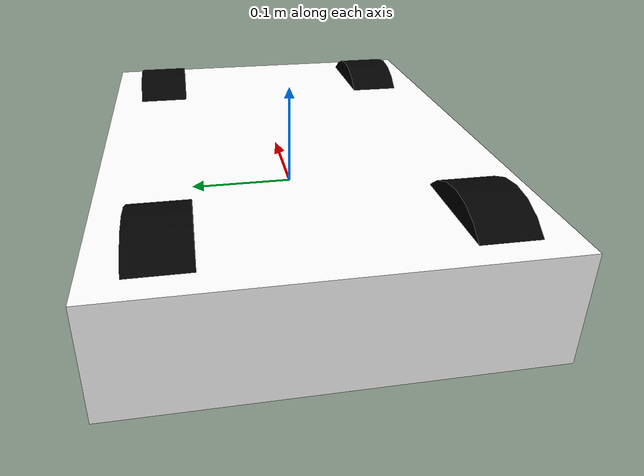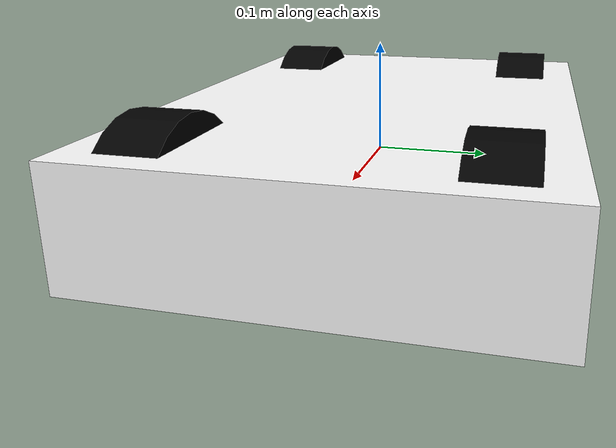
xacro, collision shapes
<?xml version="1.0" encoding="utf-8"?>

<robot name="fw_mini" xmlns:xacro="http://www.ros.org/wiki/xacro">

    <xacro:include filename="$(find irop_description)/urdf/macros.xacro" />

    <link name="base_link">
        <visual>
            <geometry>
                <mesh filename="package://irop_description/meshes/fw-mini-chassis.STL" scale="1 1 1"/>
            </geometry>
            <origin xyz="0.2475 0.19 0.07" rpy="1.57 0 -1.57" />
            <material name="white">
                <color rgba="1 1 1 1" />
            </material>
        </visual>
        <collision>
            <geometry>
                <box size="0.495 0.36 0.1" />
            </geometry>
            <origin xyz="0.0 0.0 0.0" rpy="0.0 0.0 0.0" />
        </collision>
        <inertial>
            <origin xyz="0 0 0" />
            <mass value="20" />
            <inertia ixx="0.132" ixy="0" ixz="0" iyy="0.147" iyz="0" izz="0.0182" />
        </inertial>
    </link>

    <!-- (ADD) IMU frame (matches /imu/data frame_id="sensor") -->
    <!-- IMU is 20cm above robot center (base_link origin) -->

    <link name="imu_link"/>
    <joint name="imu_joint" type="fixed">
        <origin xyz="0 0 0.211035" rpy="0 0 0"/>
        <parent link="base_link"/>
        <child link="imu_link"/>
    </joint>

    <!-- (ADD) Livox frame -->
    <link name="livox_frame"/>
    <joint name="livox_lidar_joint" type="fixed">
        <origin xyz="0 0 0.245377" rpy="0 0 0"/>
        <parent link="base_link"/>
        <child link="livox_frame"/>
    </joint>

    <link name="left_steering_hinge">
        <visual>
            <geometry>
                <cylinder radius="0.02" length="0.005" />
            </geometry>
            <origin xyz="0 0 0" rpy="1.57 0 0" />
            <material name="black">
                <color rgba="0.0 0.0 0.0 1.0" />
            </material>
        </visual>
        <collision>
            <geometry>
                <cylinder radius="0.01" length="0.005" />
            </geometry>
            <origin xyz="0.0 0.0 0.0" rpy="1.57 0.0 0.0" />
        </collision>
        <inertial>
            <origin xyz="0 0 0" />
            <mass value="1" />
            <inertia ixx="2.7E-05" ixy="0" ixz="0" iyy="2.7E-05" iyz="0" izz="5E-05" />
        </inertial>
    </link>

    <joint name="left_steering_hinge_joint" type="revolute">
        <parent link="base_link" />
        <child link="left_steering_hinge" />
        <origin xyz="0.175 0.125 0" />
        <axis xyz="0 0 1" />
        <limit lower="-1.57" upper="1.57" effort="10.0" velocity="50.0"/>
    </joint>

    <link name="left_front_wheel">
        <visual>
            <geometry>
                <mesh filename="package://irop_description/meshes/fw-mini-luntai.STL" scale="1 1 1"/>
            </geometry>
            <origin xyz="0.073 -0.305 0.425" rpy="1.57 1.57 -3.14" />
            <material name="black">
                <color rgba="0.0 0.0 0.0 1.0" />
            </material>
        </visual>
        <collision>
            <geometry>
                <cylinder radius="0.07" length="0.05" />
            </geometry>
            <origin xyz="0.0 0.0 0.0" rpy="1.57 0.0 0.0" />
        </collision>
        <inertial>
            <origin xyz="0 0 0" />
            <mass value="4" />
            <inertia
            ixx="0.01603" ixy="0" ixz="0"
            iyy="0.01603" iyz="0"
            izz="0.0288"
            />
        </inertial>
    </link>

    <joint name="left_front_wheel_joint" type="continuous">
        <parent link="left_steering_hinge" />
        <child link="left_front_wheel" />
        <origin xyz="0 0.0 0" />
        <axis xyz="0 1 0" />
        <limit effort="10" velocity="1000" />
    </joint>

    <link name="right_steering_hinge">
        <visual>
            <geometry>
                 <cylinder radius="0.02" length="0.005" />
            </geometry>
            <origin xyz="0 0 0" rpy="1.57 0 0" />
            <material name="black">
                <color rgba="0.0 0.0 0.0 1.0" />
            </material>
        </visual>
        <collision>
            <geometry>
                <cylinder radius="0.01" length="0.005" />
            </geometry>
            <origin xyz="0.0 0.0 0.0" rpy="1.57 0.0 0.0" />
        </collision>
        <inertial>
            <origin xyz="0 0 0" />
            <mass value="1" />
            <inertia ixx="2.7E-05" ixy="0" ixz="0" iyy="2.7E-05" iyz="0" izz="5E-05" />
        </inertial>
    </link>

    <joint name="right_steering_hinge_joint" type="revolute">
        <parent link="base_link" />
        <child link="right_steering_hinge" />
        <origin xyz="0.175 -0.125 0" />
        <axis xyz="0 0 1" />
        <limit lower="-1.57" upper="1.57" effort="10.0" velocity="50.0"/>
    </joint>

     <link name="right_front_wheel">
        <visual>
            <geometry>
                <mesh filename="package://irop_description/meshes/fw-mini-luntai.STL" scale="1 1 1"/>
            </geometry>
            <origin xyz="-0.073 0.305 0.425" rpy="1.57 1.57 0" />
            <material name="black">
                <color rgba="0.0 0.0 0.0 1.0" />
            </material>
        </visual>
        <collision>
            <geometry>
                <cylinder radius="0.07" length="0.05" />
            </geometry>
            <origin xyz="0.0 0.0 0.0" rpy="1.57 0.0 0.0" />
        </collision>
        <inertial>
            <origin xyz="0 0 0" />
            <mass value="4" />
            <inertia
            ixx="0.01603" ixy="0" ixz="0"
            iyy="0.01603" iyz="0"
            izz="0.0288"
            />
        </inertial>
    </link>

    <joint name="right_front_wheel_joint" type="continuous">
        <parent link="right_steering_hinge" />
        <child link="right_front_wheel" />
        <origin xyz="0 -0.0 0" />
        <axis xyz="0 1 0" />
        <limit effort="10" velocity="1000" />
    </joint>

    <link name="rear_left_steering_hinge">
        <visual>
            <geometry>
                <cylinder radius="0.02" length="0.005" />
            </geometry>
            <origin xyz="0 0 0" rpy="1.57 0 0" />
            <material name="black">
                <color rgba="0.0 0.0 0.0 1.0" />
            </material>
        </visual>
        <collision>
            <geometry>
                <cylinder radius="0.01" length="0.005" />
            </geometry>
            <origin xyz="0.0 0.0 0.0" rpy="1.57 0.0 0.0" />
        </collision>
        <inertial>
            <origin xyz="0 0 0" />
            <mass value="1" />
            <inertia ixx="2.7E-05" ixy="0" ixz="0" iyy="2.7E-05" iyz="0" izz="5E-05" />
        </inertial>
    </link>

    <joint name="rear_left_steering_hinge_joint" type="revolute">
        <parent link="base_link" />
        <child link="rear_left_steering_hinge" />
        <origin xyz="-0.175 0.125 0" />
        <axis xyz="0 0 1" />
        <limit lower="-1.57" upper="1.57" effort="10.0" velocity="50.0"/>
    </joint>

    <link name="left_rear_wheel">
        <visual>
            <geometry>
                <mesh filename="package://irop_description/meshes/fw-mini-luntai.STL" scale="1 1 1"/>
            </geometry>
            <origin xyz="0.073 -0.305 0.425" rpy="1.57 1.57 3.14" />
            <material name="black">
                <color rgba="0.0 0.0 0.0 1.0" />
            </material>
        </visual>
        <collision>
            <geometry>
                <cylinder radius="0.07" length="0.05" />
            </geometry>
            <origin xyz="0.0 0.0 0.0" rpy="1.57 0.0 0.0" />
        </collision>
        <inertial>
            <origin xyz="0 0 0" />
            <mass value="4" />
            <inertia
            ixx="0.01603" ixy="0" ixz="0"
            iyy="0.01603" iyz="0"
            izz="0.0288"
            />
        </inertial>
    </link>

    <joint name="left_rear_wheel_joint" type="continuous">
        <parent link="rear_left_steering_hinge" />
        <child link="left_rear_wheel" />
        <origin xyz="0 0.0 0" />
        <axis xyz="0 1 0" />
        <limit effort="10" velocity="1000" />
    </joint>

    <link name="rear_right_steering_hinge">
        <visual>
            <geometry>
                <cylinder radius="0.02" length="0.005" />
            </geometry>
            <origin xyz="0 0 0" rpy="1.57 0 0" />
            <material name="black">
                <color rgba="0.0 0.0 0.0 1.0" />
            </material>
        </visual>
        <collision>
            <geometry>
                <cylinder radius="0.01" length="0.005" />
            </geometry>
            <origin xyz="0.0 0.0 0.0" rpy="1.57 0.0 0.0" />
        </collision>
        <inertial>
            <origin xyz="0 0 0" />
            <mass value="1" />
            <inertia ixx="2.7E-05" ixy="0" ixz="0" iyy="2.7E-05" iyz="0" izz="5E-05" />
        </inertial>
    </link>

    <joint name="rear_right_steering_hinge_joint" type="revolute">
        <parent link="base_link" />
        <child link="rear_right_steering_hinge" />
        <origin xyz="-0.175 -0.125 0" />
        <axis xyz="0 0 1" />
        <limit lower="-1.57" upper="1.57" effort="10.0" velocity="50.0"/>
    </joint>

    <link name="right_rear_wheel">
        <visual>
            <geometry>
                <mesh filename="package://irop_description/meshes/fw-mini-luntai.STL" scale="1 1 1"/>
            </geometry>
            <origin xyz="-0.073 0.305 0.425" rpy="1.57 1.57 0" />
            <material name="black">
                <color rgba="0.0 0.0 0.0 1.0" />
            </material>
        </visual>
        <collision>
            <geometry>
                <cylinder radius="0.07" length="0.05" />
            </geometry>
            <origin xyz="0.0 0.0 0.0" rpy="1.57 0.0 0.0" />
        </collision>
        <inertial>
            <origin xyz="0 0 0" />
            <mass value="4" />
            <inertia
            ixx="0.01603" ixy="0" ixz="0"
            iyy="0.01603" iyz="0"
            izz="0.0288"
            />
        </inertial>

    </link>

    <joint name="right_rear_wheel_joint" type="continuous">
        <parent link="rear_right_steering_hinge" />
        <child link="right_rear_wheel" />
        <origin xyz="0 -0.0 0" />
        <axis xyz="0 1 0" />
        <limit effort="10" velocity="1000" />
    </joint>

</robot>
